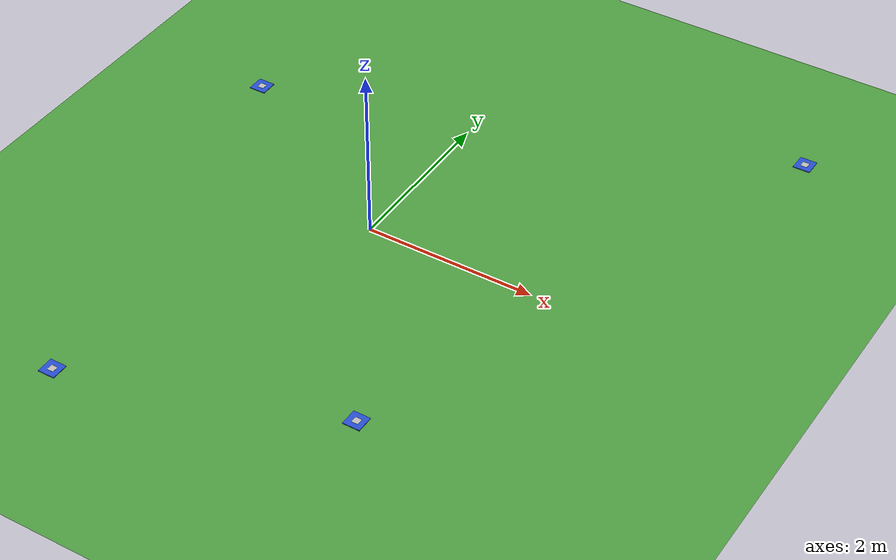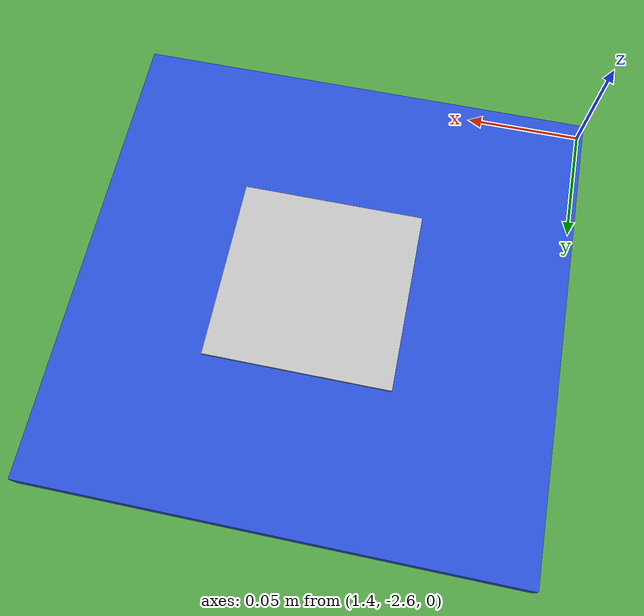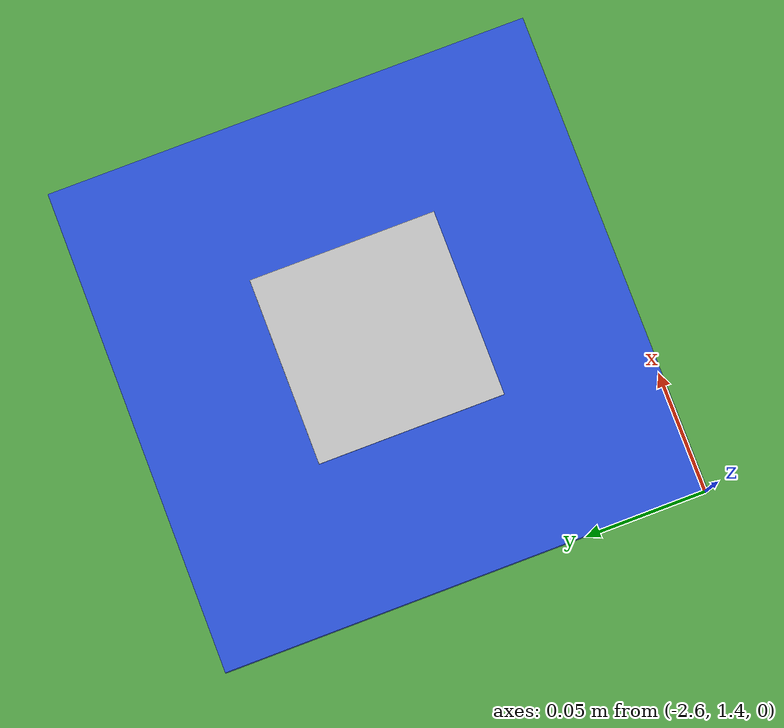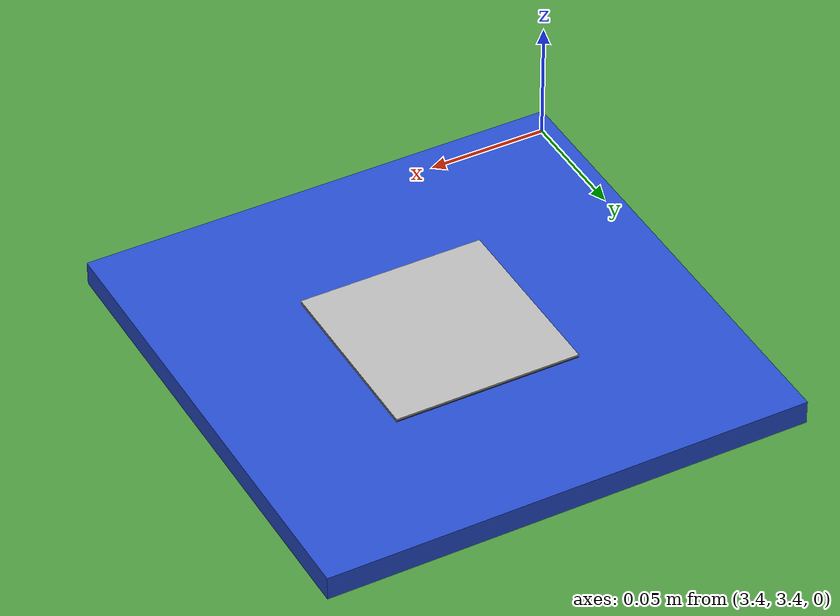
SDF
<sdf version="1.7">
 <world name="mrsim">
  <physics type="ode">
   <max_step_size>0.001</max_step_size>
   <real_time_factor>1</real_time_factor>
   <real_time_update_rate>1000</real_time_update_rate>
  </physics>
  <light name="sun" type="directional">
   <pose>0 0 10 0 -0 0</pose>
   <diffuse>0.8 0.8 0.8 1</diffuse>
   <specular>0.2 0.2 0.2 1</specular>
   <attenuation>
    <range>1000</range>
    <constant>0.9</constant>
    <linear>0.01</linear>
    <quadratic>0.001</quadratic>
   </attenuation>
   <direction>-0.5 0.1 -0.9</direction>
   <spot><inner_angle>0</inner_angle><outer_angle>0</outer_angle><falloff>0</falloff></spot>
  </light>
  <model name="ground_plane">
   <static>1</static>
   <link name="link">
    <collision name="collision">
     <geometry><plane><normal>0 0 1</normal><size>5000 5000</size></plane></geometry>
     <surface><friction><ode><mu>1</mu><mu2>1</mu2></ode></friction></surface>
    </collision>
    <visual name="grass">
     <cast_shadows>0</cast_shadows>
     <geometry><plane><normal>0 0 1</normal><size>5000 5000</size></plane></geometry>
     <material>
      <script><uri>file://media/materials/scripts/gazebo.material</uri><name>Gazebo/Grass</name></script>
     </material>
    </visual>
   </link>
  </model>
  <model name="blue_box">
   <pose>3.5 3.5 0.005005 -7.8e-05 -1.5e-05 0</pose>
   <link name="link">
    <collision name="collision">
     <geometry><box><size>0.2 0.2 0.01</size></box></geometry>
     <surface><friction><ode><mu>0</mu><mu2>0</mu2></ode></friction></surface>
    </collision>
    <visual name="visual">
     <geometry><box><size>0.2 0.2 0.01</size></box></geometry>
     <material>
      <script><uri>file://media/materials/scripts/gazebo.material</uri><name>Gazebo/Blue</name></script>
     </material>
    </visual>
    <inertial>
     <inertia><ixx>1</ixx><ixy>0</ixy><ixz>0</ixz><iyy>1</iyy><iyz>0</iyz><izz>1</izz></inertia>
     <mass>1</mass>
    </inertial>
    <velocity>0 0 0 0 -0 0</velocity>
    <acceleration>-0.004713 -9.7911 9.79156 0.732639 -0.009423 -4.3e-05</acceleration>
    <wrench>-0.004713 -9.7911 9.79156 0 -0 0</wrench>
   </link>
  </model>
  <model name="blue_box_2">
   <pose>-2.5 1.5 0.005002 4.9e-05 1e-06 0</pose>
   <link name="link">
    <collision name="collision">
     <geometry><box><size>0.2 0.2 0.01</size></box></geometry>
     <surface><friction><ode><mu>0</mu><mu2>0</mu2></ode></friction></surface>
    </collision>
    <visual name="visual">
     <geometry><box><size>0.2 0.2 0.01</size></box></geometry>
     <material>
      <script><uri>file://media/materials/scripts/gazebo.material</uri><name>Gazebo/Blue</name></script>
     </material>
    </visual>
    <inertial>
     <inertia><ixx>1</ixx><ixy>0</ixy><ixz>0</ixz><iyy>1</iyy><iyz>0</iyz><izz>1</izz></inertia>
     <mass>1</mass>
    </inertial>
    <velocity>0 0 0 0 -0 0</velocity>
    <acceleration>-0.004713 -9.7911 9.79156 0.732639 -0.009423 -4.3e-05</acceleration>
    <wrench>-0.004713 -9.7911 9.79156 0 -0 0</wrench>
   </link>
  </model>
  <model name="blue_box_3">
   <pose>1.5 -2.5 0.005 0 -7e-06 0</pose>
   <link name="link">
    <collision name="collision">
     <geometry><box><size>0.2 0.2 0.01</size></box></geometry>
     <surface><friction><ode><mu>0</mu><mu2>0</mu2></ode></friction></surface>
    </collision>
    <visual name="visual">
     <geometry><box><size>0.2 0.2 0.01</size></box></geometry>
     <material>
      <script><uri>file://media/materials/scripts/gazebo.material</uri><name>Gazebo/Blue</name></script>
     </material>
    </visual>
    <inertial>
     <inertia><ixx>1</ixx><ixy>0</ixy><ixz>0</ixz><iyy>1</iyy><iyz>0</iyz><izz>1</izz></inertia>
     <mass>1</mass>
    </inertial>
    <velocity>0 0 0 0 -0 0</velocity>
    <acceleration>-0.004713 -9.7911 9.79156 0.732639 -0.009423 -4.3e-05</acceleration>
    <wrench>-0.004713 -9.7911 9.79156 0 -0 0</wrench>
   </link>
  </model>
  <model name="blue_box_4">
   <pose>-1.5 -3.5 0.005 0 -7e-06 0</pose>
   <link name="link">
    <collision name="collision">
     <geometry><box><size>0.2 0.2 0.01</size></box></geometry>
     <surface><friction><ode><mu>0</mu><mu2>0</mu2></ode></friction></surface>
    </collision>
    <visual name="visual">
     <geometry><box><size>0.2 0.2 0.01</size></box></geometry>
     <material>
      <script><uri>file://media/materials/scripts/gazebo.material</uri><name>Gazebo/Blue</name></script>
     </material>
    </visual>
    <inertial>
     <inertia><ixx>1</ixx><ixy>0</ixy><ixz>0</ixz><iyy>1</iyy><iyz>0</iyz><izz>1</izz></inertia>
     <mass>1</mass>
    </inertial>
    <velocity>0 0 0 0 -0 0</velocity>
    <acceleration>-0.004713 -9.7911 9.79156 0.732639 -0.009423 -4.3e-05</acceleration>
    <wrench>-0.004713 -9.7911 9.79156 0 -0 0</wrench>
   </link>
  </model>
  <plugin name="optitrack" filename="optitrack-gazebo.so">
   <hz>1000</hz>
   <port>1509</port>
   <publish><link>quad::base</link><name>QR</name></publish>
  </plugin>
  <gravity>0 0 -9.81</gravity>
  <magnetic_field>2.4e-05 -0 -4e-05</magnetic_field>
  <atmosphere type="adiabatic"/>
  <scene><ambient>0.4 0.4 0.4 1</ambient><background>0.7 0.7 0.7 1</background><shadows>1</shadows></scene>
  <spherical_coordinates>
   <surface_model>EARTH_WGS84</surface_model>
   <latitude_deg>0</latitude_deg>
   <longitude_deg>0</longitude_deg>
   <elevation>0</elevation>
   <heading_deg>0</heading_deg>
  </spherical_coordinates>
  <model name="aruco_6X6_250_10">
   <link name="tag">
    <gravity>0</gravity>
    <inertial>
     <mass>0.001</mass>
     <inertia><ixx>1e-05</ixx><ixy>0</ixy><ixz>0</ixz><iyy>1e-05</iyy><iyz>0</iyz><izz>1e-05</izz></inertia>
    </inertial>
    <visual name="front">
     <pose>0 0 0 0 -0 1.57075</pose>
     <geometry><box><size>0.077143 0.077143 0.0005</size></box></geometry>
     <material>
      <script>
       <uri>model://aruco_6X6_250_10/materials/scripts</uri>
       <uri>model://aruco_6X6_250_10/materials/textures</uri>
       <name>aruco_6X6_250_10/Marker</name>
      </script>
     </material>
    </visual>
    <visual name="back">
     <pose>0 0 -0.001 0 -0 1.57075</pose>
     <geometry><box><size>0.077143 0.077143 0.001</size></box></geometry>
     <material><ambient>0 0 0 1</ambient><diffuse>0 0 0 1</diffuse></material>
    </visual>
   </link>
   <pose>1.50248 -2.50073 0.010918 0 -0 0</pose>
  </model>
  <model name="aruco_6X6_250_11">
   <link name="tag">
    <gravity>0</gravity>
    <inertial>
     <mass>0.001</mass>
     <inertia><ixx>1e-05</ixx><ixy>0</ixy><ixz>0</ixz><iyy>1e-05</iyy><iyz>0</iyz><izz>1e-05</izz></inertia>
    </inertial>
    <visual name="front">
     <pose>0 0 0 0 -0 1.57075</pose>
     <geometry><box><size>0.077143 0.077143 0.0005</size></box></geometry>
     <material>
      <script>
       <uri>model://aruco_6X6_250_11/materials/scripts</uri>
       <uri>model://aruco_6X6_250_11/materials/textures</uri>
       <name>aruco_6X6_250_11/Marker</name>
      </script>
     </material>
    </visual>
    <visual name="back">
     <pose>0 0 -0.001 0 -0 1.57075</pose>
     <geometry><box><size>0.077143 0.077143 0.001</size></box></geometry>
     <material><ambient>0 0 0 1</ambient><diffuse>0 0 0 1</diffuse></material>
    </visual>
   </link>
   <pose>-1.49759 -3.50038 0.010801 0 -0 0</pose>
  </model>
  <model name="aruco_6X6_250_12">
   <link name="tag">
    <gravity>0</gravity>
    <inertial>
     <mass>0.001</mass>
     <inertia><ixx>1e-05</ixx><ixy>0</ixy><ixz>0</ixz><iyy>1e-05</iyy><iyz>0</iyz><izz>1e-05</izz></inertia>
    </inertial>
    <visual name="front">
     <pose>0 0 0 0 -0 1.57075</pose>
     <geometry><box><size>0.077143 0.077143 0.0005</size></box></geometry>
     <material>
      <script>
       <uri>model://aruco_6X6_250_12/materials/scripts</uri>
       <uri>model://aruco_6X6_250_12/materials/textures</uri>
       <name>aruco_6X6_250_12/Marker</name>
      </script>
     </material>
    </visual>
    <visual name="back">
     <pose>0 0 -0.001 0 -0 1.57075</pose>
     <geometry><box><size>0.077143 0.077143 0.001</size></box></geometry>
     <material><ambient>0 0 0 1</ambient><diffuse>0 0 0 1</diffuse></material>
    </visual>
   </link>
   <pose>-2.49876 1.49916 0.010965 0 -0 0</pose>
  </model>
  <model name="aruco_6X6_250_13">
   <link name="tag">
    <gravity>0</gravity>
    <inertial>
     <mass>0.001</mass>
     <inertia><ixx>1e-05</ixx><ixy>0</ixy><ixz>0</ixz><iyy>1e-05</iyy><iyz>0</iyz><izz>1e-05</izz></inertia>
    </inertial>
    <visual name="front">
     <pose>0 0 0 0 -0 1.57075</pose>
     <geometry><box><size>0.077143 0.077143 0.0005</size></box></geometry>
     <material>
      <script>
       <uri>model://aruco_6X6_250_13/materials/scripts</uri>
       <uri>model://aruco_6X6_250_13/materials/textures</uri>
       <name>aruco_6X6_250_13/Marker</name>
      </script>
     </material>
    </visual>
    <visual name="back">
     <pose>0 0 -0.001 0 -0 1.57075</pose>
     <geometry><box><size>0.077143 0.077143 0.001</size></box></geometry>
     <material><ambient>0 0 0 1</ambient><diffuse>0 0 0 1</diffuse></material>
    </visual>
   </link>
   <pose>3.50039 3.49908 0.011095 0 -0 0</pose>
  </model>
 </world>
</sdf>
